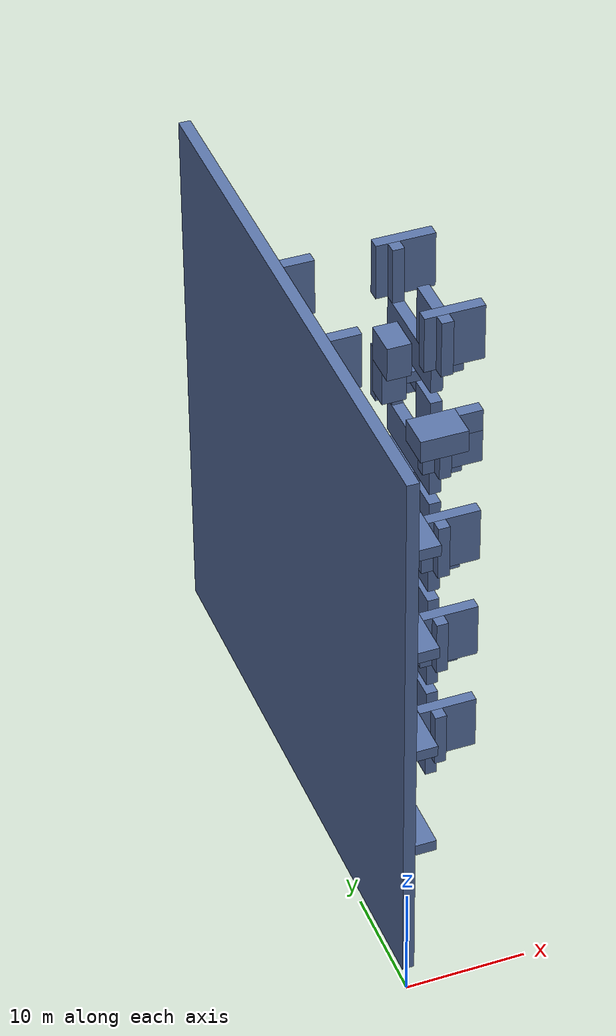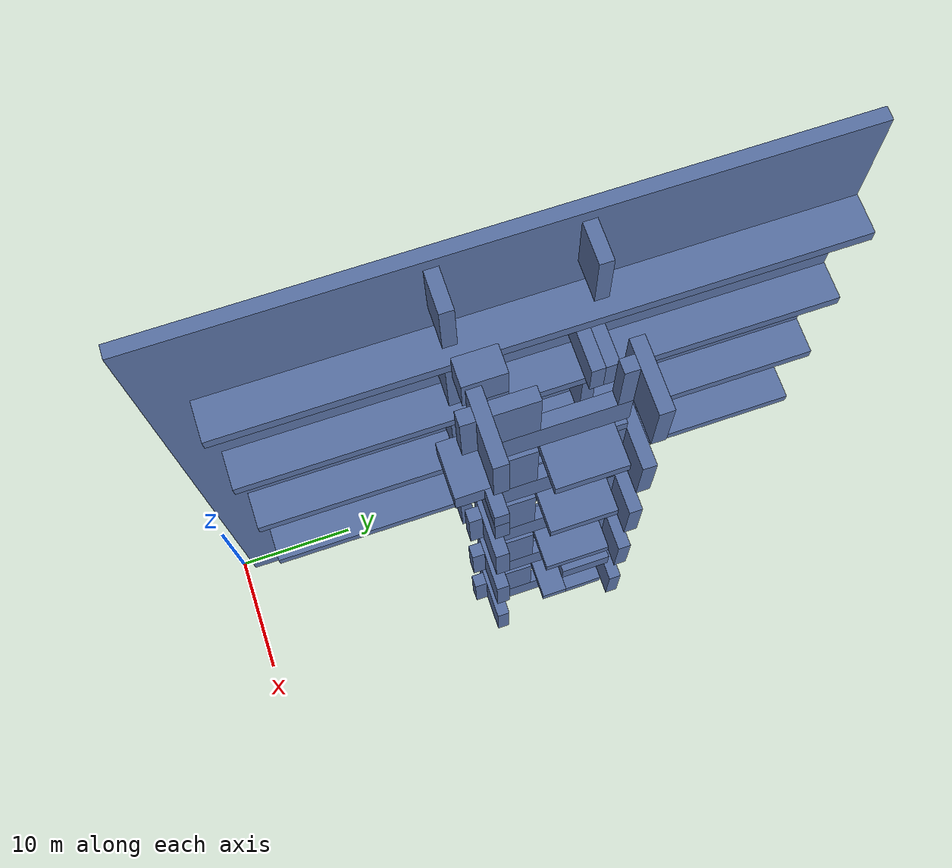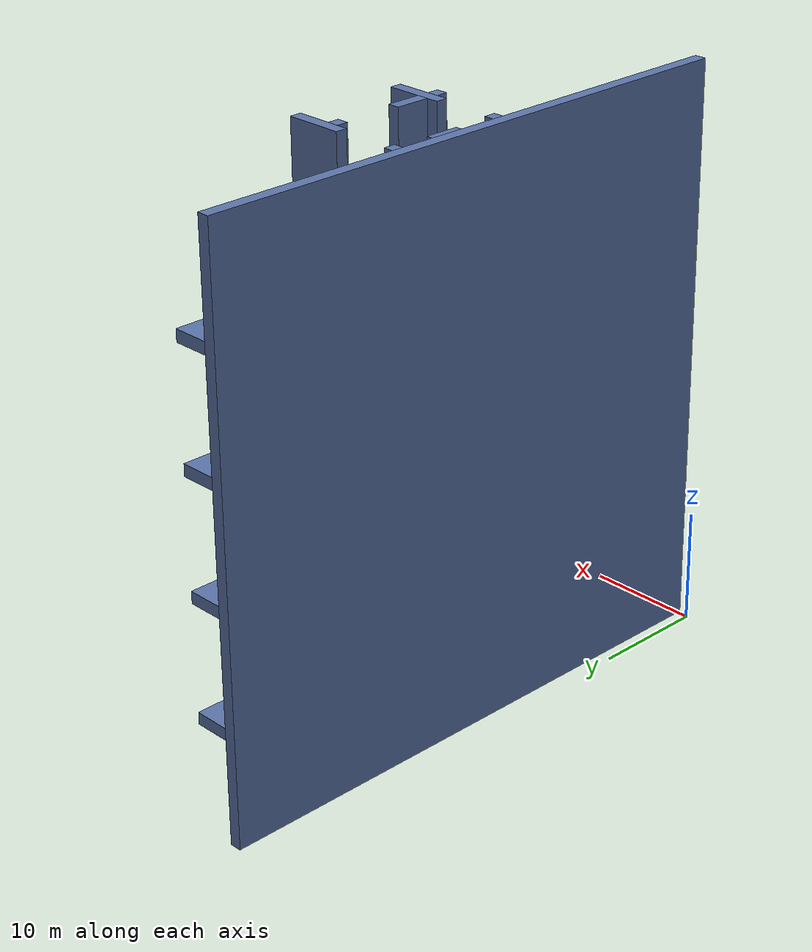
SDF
<sdf version="1.7">
 <world name="default">
  <model name="racer_env">
   <static>1</static>
   <link name="b2">
    <pose>0.500 25.500 25.500 0 0 0</pose>
    <collision name="c"><geometry><box><size>1.000 49.000 49.000</size></box></geometry></collision>
    <visual name="v">
     <geometry><box><size>1.000 49.000 49.000</size></box></geometry>
     <material><ambient>0.30 0.38 0.55 1</ambient><diffuse>0.35 0.45 0.65 1</diffuse></material>
    </visual>
   </link>
   <link name="b8">
    <pose>2.500 27.000 10.500 0 0 0</pose>
    <collision name="c"><geometry><box><size>3.000 46.000 1.000</size></box></geometry></collision>
    <visual name="v">
     <geometry><box><size>3.000 46.000 1.000</size></box></geometry>
     <material><ambient>0.30 0.38 0.55 1</ambient><diffuse>0.35 0.45 0.65 1</diffuse></material>
    </visual>
   </link>
   <link name="b9">
    <pose>2.500 27.000 20.500 0 0 0</pose>
    <collision name="c"><geometry><box><size>3.000 46.000 1.000</size></box></geometry></collision>
    <visual name="v">
     <geometry><box><size>3.000 46.000 1.000</size></box></geometry>
     <material><ambient>0.30 0.38 0.55 1</ambient><diffuse>0.35 0.45 0.65 1</diffuse></material>
    </visual>
   </link>
   <link name="b10">
    <pose>2.500 27.000 30.500 0 0 0</pose>
    <collision name="c"><geometry><box><size>3.000 46.000 1.000</size></box></geometry></collision>
    <visual name="v">
     <geometry><box><size>3.000 46.000 1.000</size></box></geometry>
     <material><ambient>0.30 0.38 0.55 1</ambient><diffuse>0.35 0.45 0.65 1</diffuse></material>
    </visual>
   </link>
   <link name="b11">
    <pose>2.500 27.000 40.500 0 0 0</pose>
    <collision name="c"><geometry><box><size>3.000 46.000 1.000</size></box></geometry></collision>
    <visual name="v">
     <geometry><box><size>3.000 46.000 1.000</size></box></geometry>
     <material><ambient>0.30 0.38 0.55 1</ambient><diffuse>0.35 0.45 0.65 1</diffuse></material>
    </visual>
   </link>
   <link name="b23">
    <pose>2.500 20.500 7.000 0 0 0</pose>
    <collision name="c"><geometry><box><size>3.000 1.000 6.000</size></box></geometry></collision>
    <visual name="v">
     <geometry><box><size>3.000 1.000 6.000</size></box></geometry>
     <material><ambient>0.30 0.38 0.55 1</ambient><diffuse>0.35 0.45 0.65 1</diffuse></material>
    </visual>
   </link>
   <link name="b25">
    <pose>2.500 20.500 17.000 0 0 0</pose>
    <collision name="c"><geometry><box><size>3.000 1.000 6.000</size></box></geometry></collision>
    <visual name="v">
     <geometry><box><size>3.000 1.000 6.000</size></box></geometry>
     <material><ambient>0.30 0.38 0.55 1</ambient><diffuse>0.35 0.45 0.65 1</diffuse></material>
    </visual>
   </link>
   <link name="b27">
    <pose>2.500 20.500 27.000 0 0 0</pose>
    <collision name="c"><geometry><box><size>3.000 1.000 6.000</size></box></geometry></collision>
    <visual name="v">
     <geometry><box><size>3.000 1.000 6.000</size></box></geometry>
     <material><ambient>0.30 0.38 0.55 1</ambient><diffuse>0.35 0.45 0.65 1</diffuse></material>
    </visual>
   </link>
   <link name="b29">
    <pose>2.500 20.500 37.000 0 0 0</pose>
    <collision name="c"><geometry><box><size>3.000 1.000 6.000</size></box></geometry></collision>
    <visual name="v">
     <geometry><box><size>3.000 1.000 6.000</size></box></geometry>
     <material><ambient>0.30 0.38 0.55 1</ambient><diffuse>0.35 0.45 0.65 1</diffuse></material>
    </visual>
   </link>
   <link name="b31">
    <pose>2.500 20.500 46.500 0 0 0</pose>
    <collision name="c"><geometry><box><size>3.000 1.000 5.000</size></box></geometry></collision>
    <visual name="v">
     <geometry><box><size>3.000 1.000 5.000</size></box></geometry>
     <material><ambient>0.30 0.38 0.55 1</ambient><diffuse>0.35 0.45 0.65 1</diffuse></material>
    </visual>
   </link>
   <link name="b33">
    <pose>2.500 30.500 7.000 0 0 0</pose>
    <collision name="c"><geometry><box><size>3.000 1.000 6.000</size></box></geometry></collision>
    <visual name="v">
     <geometry><box><size>3.000 1.000 6.000</size></box></geometry>
     <material><ambient>0.30 0.38 0.55 1</ambient><diffuse>0.35 0.45 0.65 1</diffuse></material>
    </visual>
   </link>
   <link name="b35">
    <pose>2.500 30.500 17.000 0 0 0</pose>
    <collision name="c"><geometry><box><size>3.000 1.000 6.000</size></box></geometry></collision>
    <visual name="v">
     <geometry><box><size>3.000 1.000 6.000</size></box></geometry>
     <material><ambient>0.30 0.38 0.55 1</ambient><diffuse>0.35 0.45 0.65 1</diffuse></material>
    </visual>
   </link>
   <link name="b37">
    <pose>2.500 30.500 27.000 0 0 0</pose>
    <collision name="c"><geometry><box><size>3.000 1.000 6.000</size></box></geometry></collision>
    <visual name="v">
     <geometry><box><size>3.000 1.000 6.000</size></box></geometry>
     <material><ambient>0.30 0.38 0.55 1</ambient><diffuse>0.35 0.45 0.65 1</diffuse></material>
    </visual>
   </link>
   <link name="b39">
    <pose>2.500 30.500 37.000 0 0 0</pose>
    <collision name="c"><geometry><box><size>3.000 1.000 6.000</size></box></geometry></collision>
    <visual name="v">
     <geometry><box><size>3.000 1.000 6.000</size></box></geometry>
     <material><ambient>0.30 0.38 0.55 1</ambient><diffuse>0.35 0.45 0.65 1</diffuse></material>
    </visual>
   </link>
   <link name="b41">
    <pose>2.500 30.500 46.500 0 0 0</pose>
    <collision name="c"><geometry><box><size>3.000 1.000 5.000</size></box></geometry></collision>
    <visual name="v">
     <geometry><box><size>3.000 1.000 5.000</size></box></geometry>
     <material><ambient>0.30 0.38 0.55 1</ambient><diffuse>0.35 0.45 0.65 1</diffuse></material>
    </visual>
   </link>
   <link name="b57">
    <pose>4.500 29.500 38.500 0 0 0</pose>
    <collision name="c"><geometry><box><size>5.000 1.000 3.000</size></box></geometry></collision>
    <visual name="v">
     <geometry><box><size>5.000 1.000 3.000</size></box></geometry>
     <material><ambient>0.30 0.38 0.55 1</ambient><diffuse>0.35 0.45 0.65 1</diffuse></material>
    </visual>
   </link>
   <link name="b82">
    <pose>5.500 30.500 38.500 0 0 0</pose>
    <collision name="c"><geometry><box><size>3.000 1.000 3.000</size></box></geometry></collision>
    <visual name="v">
     <geometry><box><size>3.000 1.000 3.000</size></box></geometry>
     <material><ambient>0.30 0.38 0.55 1</ambient><diffuse>0.35 0.45 0.65 1</diffuse></material>
    </visual>
   </link>
   <link name="b98">
    <pose>7.000 21.500 45.500 0 0 0</pose>
    <collision name="c"><geometry><box><size>2.000 3.000 3.000</size></box></geometry></collision>
    <visual name="v">
     <geometry><box><size>2.000 3.000 3.000</size></box></geometry>
     <material><ambient>0.30 0.38 0.55 1</ambient><diffuse>0.35 0.45 0.65 1</diffuse></material>
    </visual>
   </link>
   <link name="b99">
    <pose>7.000 22.000 42.500 0 0 0</pose>
    <collision name="c"><geometry><box><size>2.000 2.000 3.000</size></box></geometry></collision>
    <visual name="v">
     <geometry><box><size>2.000 2.000 3.000</size></box></geometry>
     <material><ambient>0.30 0.38 0.55 1</ambient><diffuse>0.35 0.45 0.65 1</diffuse></material>
    </visual>
   </link>
   <link name="b100">
    <pose>10.500 27.500 10.500 0 0 0</pose>
    <collision name="c"><geometry><box><size>7.000 3.000 1.000</size></box></geometry></collision>
    <visual name="v">
     <geometry><box><size>7.000 3.000 1.000</size></box></geometry>
     <material><ambient>0.30 0.38 0.55 1</ambient><diffuse>0.35 0.45 0.65 1</diffuse></material>
    </visual>
   </link>
   <link name="b101">
    <pose>10.000 28.000 12.000 0 0 0</pose>
    <collision name="c"><geometry><box><size>6.000 4.000 2.000</size></box></geometry></collision>
    <visual name="v">
     <geometry><box><size>6.000 4.000 2.000</size></box></geometry>
     <material><ambient>0.30 0.38 0.55 1</ambient><diffuse>0.35 0.45 0.65 1</diffuse></material>
    </visual>
   </link>
   <link name="b103">
    <pose>10.000 19.500 38.000 0 0 0</pose>
    <collision name="c"><geometry><box><size>4.000 3.000 2.000</size></box></geometry></collision>
    <visual name="v">
     <geometry><box><size>4.000 3.000 2.000</size></box></geometry>
     <material><ambient>0.30 0.38 0.55 1</ambient><diffuse>0.35 0.45 0.65 1</diffuse></material>
    </visual>
   </link>
   <link name="b118">
    <pose>11.500 20.500 6.500 0 0 0</pose>
    <collision name="c"><geometry><box><size>5.000 1.000 5.000</size></box></geometry></collision>
    <visual name="v">
     <geometry><box><size>5.000 1.000 5.000</size></box></geometry>
     <material><ambient>0.30 0.38 0.55 1</ambient><diffuse>0.35 0.45 0.65 1</diffuse></material>
    </visual>
   </link>
   <link name="b119">
    <pose>11.500 20.500 16.500 0 0 0</pose>
    <collision name="c"><geometry><box><size>5.000 1.000 5.000</size></box></geometry></collision>
    <visual name="v">
     <geometry><box><size>5.000 1.000 5.000</size></box></geometry>
     <material><ambient>0.30 0.38 0.55 1</ambient><diffuse>0.35 0.45 0.65 1</diffuse></material>
    </visual>
   </link>
   <link name="b120">
    <pose>11.500 20.500 26.500 0 0 0</pose>
    <collision name="c"><geometry><box><size>5.000 1.000 5.000</size></box></geometry></collision>
    <visual name="v">
     <geometry><box><size>5.000 1.000 5.000</size></box></geometry>
     <material><ambient>0.30 0.38 0.55 1</ambient><diffuse>0.35 0.45 0.65 1</diffuse></material>
    </visual>
   </link>
   <link name="b121">
    <pose>11.500 20.500 35.500 0 0 0</pose>
    <collision name="c"><geometry><box><size>5.000 1.000 3.000</size></box></geometry></collision>
    <visual name="v">
     <geometry><box><size>5.000 1.000 3.000</size></box></geometry>
     <material><ambient>0.30 0.38 0.55 1</ambient><diffuse>0.35 0.45 0.65 1</diffuse></material>
    </visual>
   </link>
   <link name="b122">
    <pose>11.500 20.500 46.500 0 0 0</pose>
    <collision name="c"><geometry><box><size>5.000 1.000 5.000</size></box></geometry></collision>
    <visual name="v">
     <geometry><box><size>5.000 1.000 5.000</size></box></geometry>
     <material><ambient>0.30 0.38 0.55 1</ambient><diffuse>0.35 0.45 0.65 1</diffuse></material>
    </visual>
   </link>
   <link name="b123">
    <pose>11.500 25.000 10.500 0 0 0</pose>
    <collision name="c"><geometry><box><size>5.000 2.000 1.000</size></box></geometry></collision>
    <visual name="v">
     <geometry><box><size>5.000 2.000 1.000</size></box></geometry>
     <material><ambient>0.30 0.38 0.55 1</ambient><diffuse>0.35 0.45 0.65 1</diffuse></material>
    </visual>
   </link>
   <link name="b124">
    <pose>11.500 26.500 20.500 0 0 0</pose>
    <collision name="c"><geometry><box><size>5.000 5.000 1.000</size></box></geometry></collision>
    <visual name="v">
     <geometry><box><size>5.000 5.000 1.000</size></box></geometry>
     <material><ambient>0.30 0.38 0.55 1</ambient><diffuse>0.35 0.45 0.65 1</diffuse></material>
    </visual>
   </link>
   <link name="b125">
    <pose>11.500 26.500 30.500 0 0 0</pose>
    <collision name="c"><geometry><box><size>5.000 5.000 1.000</size></box></geometry></collision>
    <visual name="v">
     <geometry><box><size>5.000 5.000 1.000</size></box></geometry>
     <material><ambient>0.30 0.38 0.55 1</ambient><diffuse>0.35 0.45 0.65 1</diffuse></material>
    </visual>
   </link>
   <link name="b126">
    <pose>11.500 26.500 40.500 0 0 0</pose>
    <collision name="c"><geometry><box><size>5.000 5.000 1.000</size></box></geometry></collision>
    <visual name="v">
     <geometry><box><size>5.000 5.000 1.000</size></box></geometry>
     <material><ambient>0.30 0.38 0.55 1</ambient><diffuse>0.35 0.45 0.65 1</diffuse></material>
    </visual>
   </link>
   <link name="b127">
    <pose>11.500 30.500 6.500 0 0 0</pose>
    <collision name="c"><geometry><box><size>5.000 1.000 5.000</size></box></geometry></collision>
    <visual name="v">
     <geometry><box><size>5.000 1.000 5.000</size></box></geometry>
     <material><ambient>0.30 0.38 0.55 1</ambient><diffuse>0.35 0.45 0.65 1</diffuse></material>
    </visual>
   </link>
   <link name="b128">
    <pose>11.500 30.500 16.500 0 0 0</pose>
    <collision name="c"><geometry><box><size>5.000 1.000 5.000</size></box></geometry></collision>
    <visual name="v">
     <geometry><box><size>5.000 1.000 5.000</size></box></geometry>
     <material><ambient>0.30 0.38 0.55 1</ambient><diffuse>0.35 0.45 0.65 1</diffuse></material>
    </visual>
   </link>
   <link name="b129">
    <pose>11.500 30.500 26.500 0 0 0</pose>
    <collision name="c"><geometry><box><size>5.000 1.000 5.000</size></box></geometry></collision>
    <visual name="v">
     <geometry><box><size>5.000 1.000 5.000</size></box></geometry>
     <material><ambient>0.30 0.38 0.55 1</ambient><diffuse>0.35 0.45 0.65 1</diffuse></material>
    </visual>
   </link>
   <link name="b130">
    <pose>11.500 30.500 36.500 0 0 0</pose>
    <collision name="c"><geometry><box><size>5.000 1.000 5.000</size></box></geometry></collision>
    <visual name="v">
     <geometry><box><size>5.000 1.000 5.000</size></box></geometry>
     <material><ambient>0.30 0.38 0.55 1</ambient><diffuse>0.35 0.45 0.65 1</diffuse></material>
    </visual>
   </link>
   <link name="b131">
    <pose>11.500 30.500 46.500 0 0 0</pose>
    <collision name="c"><geometry><box><size>5.000 1.000 5.000</size></box></geometry></collision>
    <visual name="v">
     <geometry><box><size>5.000 1.000 5.000</size></box></geometry>
     <material><ambient>0.30 0.38 0.55 1</ambient><diffuse>0.35 0.45 0.65 1</diffuse></material>
    </visual>
   </link>
   <link name="b178">
    <pose>10.500 19.500 6.500 0 0 0</pose>
    <collision name="c"><geometry><box><size>1.000 1.000 5.000</size></box></geometry></collision>
    <visual name="v">
     <geometry><box><size>1.000 1.000 5.000</size></box></geometry>
     <material><ambient>0.30 0.38 0.55 1</ambient><diffuse>0.35 0.45 0.65 1</diffuse></material>
    </visual>
   </link>
   <link name="b179">
    <pose>10.500 19.500 16.500 0 0 0</pose>
    <collision name="c"><geometry><box><size>1.000 1.000 5.000</size></box></geometry></collision>
    <visual name="v">
     <geometry><box><size>1.000 1.000 5.000</size></box></geometry>
     <material><ambient>0.30 0.38 0.55 1</ambient><diffuse>0.35 0.45 0.65 1</diffuse></material>
    </visual>
   </link>
   <link name="b180">
    <pose>10.500 19.500 26.500 0 0 0</pose>
    <collision name="c"><geometry><box><size>1.000 1.000 5.000</size></box></geometry></collision>
    <visual name="v">
     <geometry><box><size>1.000 1.000 5.000</size></box></geometry>
     <material><ambient>0.30 0.38 0.55 1</ambient><diffuse>0.35 0.45 0.65 1</diffuse></material>
    </visual>
   </link>
   <link name="b181">
    <pose>10.500 19.500 35.500 0 0 0</pose>
    <collision name="c"><geometry><box><size>1.000 1.000 3.000</size></box></geometry></collision>
    <visual name="v">
     <geometry><box><size>1.000 1.000 3.000</size></box></geometry>
     <material><ambient>0.30 0.38 0.55 1</ambient><diffuse>0.35 0.45 0.65 1</diffuse></material>
    </visual>
   </link>
   <link name="b182">
    <pose>10.500 19.500 46.500 0 0 0</pose>
    <collision name="c"><geometry><box><size>1.000 1.000 5.000</size></box></geometry></collision>
    <visual name="v">
     <geometry><box><size>1.000 1.000 5.000</size></box></geometry>
     <material><ambient>0.30 0.38 0.55 1</ambient><diffuse>0.35 0.45 0.65 1</diffuse></material>
    </visual>
   </link>
   <link name="b183">
    <pose>10.500 25.500 2.500 0 0 0</pose>
    <collision name="c"><geometry><box><size>1.000 9.000 3.000</size></box></geometry></collision>
    <visual name="v">
     <geometry><box><size>1.000 9.000 3.000</size></box></geometry>
     <material><ambient>0.30 0.38 0.55 1</ambient><diffuse>0.35 0.45 0.65 1</diffuse></material>
    </visual>
   </link>
   <link name="b184">
    <pose>10.500 22.500 7.000 0 0 0</pose>
    <collision name="c"><geometry><box><size>1.000 3.000 6.000</size></box></geometry></collision>
    <visual name="v">
     <geometry><box><size>1.000 3.000 6.000</size></box></geometry>
     <material><ambient>0.30 0.38 0.55 1</ambient><diffuse>0.35 0.45 0.65 1</diffuse></material>
    </visual>
   </link>
   <link name="b185">
    <pose>10.500 23.500 12.500 0 0 0</pose>
    <collision name="c"><geometry><box><size>1.000 5.000 3.000</size></box></geometry></collision>
    <visual name="v">
     <geometry><box><size>1.000 5.000 3.000</size></box></geometry>
     <material><ambient>0.30 0.38 0.55 1</ambient><diffuse>0.35 0.45 0.65 1</diffuse></material>
    </visual>
   </link>
   <link name="b186">
    <pose>10.500 22.500 17.000 0 0 0</pose>
    <collision name="c"><geometry><box><size>1.000 3.000 6.000</size></box></geometry></collision>
    <visual name="v">
     <geometry><box><size>1.000 3.000 6.000</size></box></geometry>
     <material><ambient>0.30 0.38 0.55 1</ambient><diffuse>0.35 0.45 0.65 1</diffuse></material>
    </visual>
   </link>
   <link name="b187">
    <pose>10.500 25.500 22.500 0 0 0</pose>
    <collision name="c"><geometry><box><size>1.000 9.000 3.000</size></box></geometry></collision>
    <visual name="v">
     <geometry><box><size>1.000 9.000 3.000</size></box></geometry>
     <material><ambient>0.30 0.38 0.55 1</ambient><diffuse>0.35 0.45 0.65 1</diffuse></material>
    </visual>
   </link>
   <link name="b188">
    <pose>10.500 22.500 27.000 0 0 0</pose>
    <collision name="c"><geometry><box><size>1.000 3.000 6.000</size></box></geometry></collision>
    <visual name="v">
     <geometry><box><size>1.000 3.000 6.000</size></box></geometry>
     <material><ambient>0.30 0.38 0.55 1</ambient><diffuse>0.35 0.45 0.65 1</diffuse></material>
    </visual>
   </link>
   <link name="b189">
    <pose>10.500 25.500 32.500 0 0 0</pose>
    <collision name="c"><geometry><box><size>1.000 9.000 3.000</size></box></geometry></collision>
    <visual name="v">
     <geometry><box><size>1.000 9.000 3.000</size></box></geometry>
     <material><ambient>0.30 0.38 0.55 1</ambient><diffuse>0.35 0.45 0.65 1</diffuse></material>
    </visual>
   </link>
   <link name="b190">
    <pose>10.500 22.500 37.000 0 0 0</pose>
    <collision name="c"><geometry><box><size>1.000 3.000 6.000</size></box></geometry></collision>
    <visual name="v">
     <geometry><box><size>1.000 3.000 6.000</size></box></geometry>
     <material><ambient>0.30 0.38 0.55 1</ambient><diffuse>0.35 0.45 0.65 1</diffuse></material>
    </visual>
   </link>
   <link name="b191">
    <pose>10.500 25.500 42.500 0 0 0</pose>
    <collision name="c"><geometry><box><size>1.000 9.000 3.000</size></box></geometry></collision>
    <visual name="v">
     <geometry><box><size>1.000 9.000 3.000</size></box></geometry>
     <material><ambient>0.30 0.38 0.55 1</ambient><diffuse>0.35 0.45 0.65 1</diffuse></material>
    </visual>
   </link>
   <link name="b192">
    <pose>10.500 22.500 46.500 0 0 0</pose>
    <collision name="c"><geometry><box><size>1.000 3.000 5.000</size></box></geometry></collision>
    <visual name="v">
     <geometry><box><size>1.000 3.000 5.000</size></box></geometry>
     <material><ambient>0.30 0.38 0.55 1</ambient><diffuse>0.35 0.45 0.65 1</diffuse></material>
    </visual>
   </link>
   <link name="b193">
    <pose>10.500 27.000 9.500 0 0 0</pose>
    <collision name="c"><geometry><box><size>1.000 6.000 1.000</size></box></geometry></collision>
    <visual name="v">
     <geometry><box><size>1.000 6.000 1.000</size></box></geometry>
     <material><ambient>0.30 0.38 0.55 1</ambient><diffuse>0.35 0.45 0.65 1</diffuse></material>
    </visual>
   </link>
   <link name="b194">
    <pose>10.500 27.000 19.500 0 0 0</pose>
    <collision name="c"><geometry><box><size>1.000 6.000 1.000</size></box></geometry></collision>
    <visual name="v">
     <geometry><box><size>1.000 6.000 1.000</size></box></geometry>
     <material><ambient>0.30 0.38 0.55 1</ambient><diffuse>0.35 0.45 0.65 1</diffuse></material>
    </visual>
   </link>
   <link name="b195">
    <pose>10.500 27.000 29.500 0 0 0</pose>
    <collision name="c"><geometry><box><size>1.000 6.000 1.000</size></box></geometry></collision>
    <visual name="v">
     <geometry><box><size>1.000 6.000 1.000</size></box></geometry>
     <material><ambient>0.30 0.38 0.55 1</ambient><diffuse>0.35 0.45 0.65 1</diffuse></material>
    </visual>
   </link>
   <link name="b196">
    <pose>10.500 27.000 39.500 0 0 0</pose>
    <collision name="c"><geometry><box><size>1.000 6.000 1.000</size></box></geometry></collision>
    <visual name="v">
     <geometry><box><size>1.000 6.000 1.000</size></box></geometry>
     <material><ambient>0.30 0.38 0.55 1</ambient><diffuse>0.35 0.45 0.65 1</diffuse></material>
    </visual>
   </link>
   <link name="b197">
    <pose>10.500 28.000 13.500 0 0 0</pose>
    <collision name="c"><geometry><box><size>1.000 4.000 1.000</size></box></geometry></collision>
    <visual name="v">
     <geometry><box><size>1.000 4.000 1.000</size></box></geometry>
     <material><ambient>0.30 0.38 0.55 1</ambient><diffuse>0.35 0.45 0.65 1</diffuse></material>
    </visual>
   </link>
   <link name="b198">
    <pose>10.500 29.500 6.500 0 0 0</pose>
    <collision name="c"><geometry><box><size>1.000 1.000 5.000</size></box></geometry></collision>
    <visual name="v">
     <geometry><box><size>1.000 1.000 5.000</size></box></geometry>
     <material><ambient>0.30 0.38 0.55 1</ambient><diffuse>0.35 0.45 0.65 1</diffuse></material>
    </visual>
   </link>
   <link name="b199">
    <pose>10.500 29.500 16.500 0 0 0</pose>
    <collision name="c"><geometry><box><size>1.000 1.000 5.000</size></box></geometry></collision>
    <visual name="v">
     <geometry><box><size>1.000 1.000 5.000</size></box></geometry>
     <material><ambient>0.30 0.38 0.55 1</ambient><diffuse>0.35 0.45 0.65 1</diffuse></material>
    </visual>
   </link>
   <link name="b200">
    <pose>10.500 29.500 26.500 0 0 0</pose>
    <collision name="c"><geometry><box><size>1.000 1.000 5.000</size></box></geometry></collision>
    <visual name="v">
     <geometry><box><size>1.000 1.000 5.000</size></box></geometry>
     <material><ambient>0.30 0.38 0.55 1</ambient><diffuse>0.35 0.45 0.65 1</diffuse></material>
    </visual>
   </link>
   <link name="b201">
    <pose>10.500 29.500 36.500 0 0 0</pose>
    <collision name="c"><geometry><box><size>1.000 1.000 5.000</size></box></geometry></collision>
    <visual name="v">
     <geometry><box><size>1.000 1.000 5.000</size></box></geometry>
     <material><ambient>0.30 0.38 0.55 1</ambient><diffuse>0.35 0.45 0.65 1</diffuse></material>
    </visual>
   </link>
   <link name="b202">
    <pose>10.500 29.500 46.500 0 0 0</pose>
    <collision name="c"><geometry><box><size>1.000 1.000 5.000</size></box></geometry></collision>
    <visual name="v">
     <geometry><box><size>1.000 1.000 5.000</size></box></geometry>
     <material><ambient>0.30 0.38 0.55 1</ambient><diffuse>0.35 0.45 0.65 1</diffuse></material>
    </visual>
   </link>
   <link name="b236">
    <pose>13.000 20.500 38.000 0 0 0</pose>
    <collision name="c"><geometry><box><size>2.000 1.000 2.000</size></box></geometry></collision>
    <visual name="v">
     <geometry><box><size>2.000 1.000 2.000</size></box></geometry>
     <material><ambient>0.30 0.38 0.55 1</ambient><diffuse>0.35 0.45 0.65 1</diffuse></material>
    </visual>
   </link>
  </model>
 </world>
</sdf>
